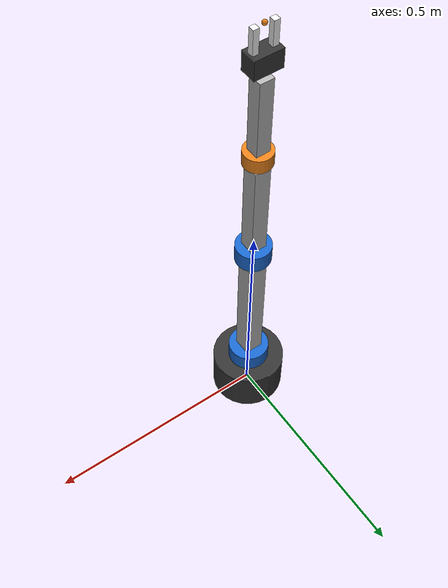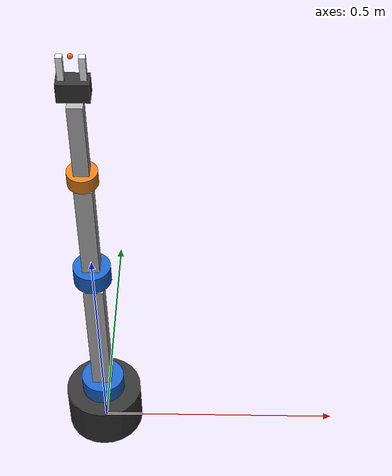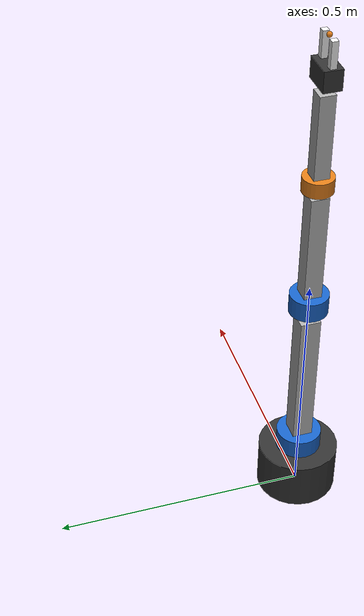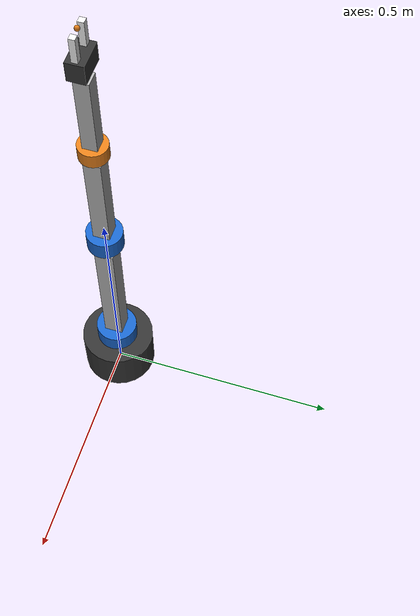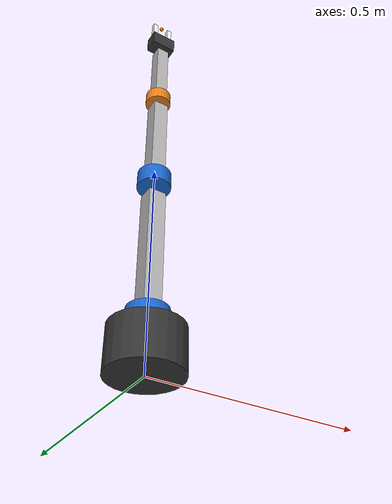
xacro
<?xml version="1.0"?>
<robot xmlns:xacro="http://www.ros.org/wiki/xacro" name="pick_place_3dof">
    <xacro:arg name="initial_positions_file" default="initial_positions.yaml" />

    <!-- Import pick_place_3dof urdf file -->
    <xacro:include filename="$(find robotic_arm_description)/urdf/arm.urdf" />

    <!-- Import control_xacro -->
    <xacro:include filename="pick_place_3dof.ros2_control.xacro" />

    <xacro:pick_place_3dof_ros2_control name="FakeSystem" initial_positions_file="$(arg initial_positions_file)"/>

</robot>

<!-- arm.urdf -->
<robot name="pick_place_3dof">

  <!-- ==================== MATERIALS ==================== -->
  <material name="dark_grey">
    <color rgba="0.2 0.2 0.2 1.0"/>
  </material>
  <material name="light_grey">
    <color rgba="0.7 0.7 0.7 1.0"/>
  </material>
  <material name="blue">
    <color rgba="0.1 0.4 0.8 1.0"/>
  </material>
  <material name="orange">
    <color rgba="0.9 0.5 0.1 1.0"/>
  </material>
  <material name="white">
    <color rgba="0.95 0.95 0.95 1.0"/>
  </material>

  <!-- ==================== BASE LINK (World anchor) ==================== -->
  <link name="world"/>

  <joint name="world_to_base" type="fixed">
    <parent link="world"/>
    <child link="base_link"/>
    <origin xyz="0 0 0" rpy="0 0 0"/>
  </joint>

  <!-- ==================== BASE LINK ==================== -->
  <link name="base_link">
    <visual>
      <origin xyz="0 0 0.05" rpy="0 0 0"/>
      <geometry>
        <cylinder radius="0.08" length="0.10"/>
      </geometry>
      <material name="dark_grey"/>
    </visual>
    <collision>
      <origin xyz="0 0 0.05" rpy="0 0 0"/>
      <geometry>
        <cylinder radius="0.08" length="0.10"/>
      </geometry>
    </collision>
    <inertial>
      <origin xyz="0 0 0.05" rpy="0 0 0"/>
      <mass value="2.0"/>
      <inertia ixx="0.0083" ixy="0.0" ixz="0.0"
               iyy="0.0083" iyz="0.0"
               izz="0.0128"/>
    </inertial>
  </link>

  <!-- ==================== JOINT 1 — Waist (Rotation Z) ==================== -->
  <joint name="joint1_waist" type="revolute">
    <parent link="base_link"/>
    <child link="link1"/>
    <origin xyz="0 0 0.10" rpy="0 0 0"/>
    <axis xyz="0 0 1"/>
    <limit lower="-3.1416" upper="3.1416" effort="50.0" velocity="1.0"/>
    <dynamics damping="0.5" friction="0.1"/>
  </joint>

  <!-- ==================== LINK 1 — Lower Arm ==================== -->
  <link name="link1">
    <visual>
      <!-- Shoulder hub -->
      <origin xyz="0 0 0.02" rpy="0 0 0"/>
      <geometry>
        <cylinder radius="0.045" length="0.04"/>
      </geometry>
      <material name="blue"/>
    </visual>
    <collision>
      <origin xyz="0 0 0.02" rpy="0 0 0"/>
      <geometry>
        <cylinder radius="0.045" length="0.04"/>
      </geometry>
    </collision>

    <!-- Lower arm body — separate visual element -->
    <visual>
      <origin xyz="0 0 0.175" rpy="0 0 0"/>
      <geometry>
        <box size="0.04 0.04 0.31"/>
      </geometry>
      <material name="light_grey"/>
    </visual>
    <collision>
      <origin xyz="0 0 0.175" rpy="0 0 0"/>
      <geometry>
        <box size="0.04 0.04 0.31"/>
      </geometry>
    </collision>

    <inertial>
      <origin xyz="0 0 0.175" rpy="0 0 0"/>
      <mass value="1.0"/>
      <inertia ixx="0.0082" ixy="0.0" ixz="0.0"
               iyy="0.0082" iyz="0.0"
               izz="0.0003"/>
    </inertial>
  </link>

  <!-- ==================== JOINT 2 — Shoulder (Rotation Y) ==================== -->
  <joint name="joint2_shoulder" type="revolute">
    <parent link="link1"/>
    <child link="link2"/>
    <origin xyz="0 0 0.35" rpy="0 0 0"/>
    <axis xyz="0 1 0"/>
    <limit lower="-1.5708" upper="1.5708" effort="40.0" velocity="1.0"/>
    <dynamics damping="0.5" friction="0.1"/>
  </joint>

  <!-- ==================== LINK 2 — Upper Arm ==================== -->
  <link name="link2">
    <visual>
      <!-- Elbow hub -->
      <origin xyz="0 0 0.02" rpy="0 0 0"/>
      <geometry>
        <cylinder radius="0.038" length="0.04"/>
      </geometry>
      <material name="blue"/>
    </visual>
    <collision>
      <origin xyz="0 0 0.02" rpy="0 0 0"/>
      <geometry>
        <cylinder radius="0.038" length="0.04"/>
      </geometry>
    </collision>

    <!-- Upper arm body -->
    <visual>
      <origin xyz="0 0 0.135" rpy="0 0 0"/>
      <geometry>
        <box size="0.035 0.035 0.25"/>
      </geometry>
      <material name="light_grey"/>
    </visual>
    <collision>
      <origin xyz="0 0 0.135" rpy="0 0 0"/>
      <geometry>
        <box size="0.035 0.035 0.25"/>
      </geometry>
    </collision>

    <inertial>
      <origin xyz="0 0 0.135" rpy="0 0 0"/>
      <mass value="0.8"/>
      <inertia ixx="0.0043" ixy="0.0" ixz="0.0"
               iyy="0.0043" iyz="0.0"
               izz="0.0002"/>
    </inertial>
  </link>

  <!-- ==================== JOINT 3 — Elbow (Rotation Y) ==================== -->
  <joint name="joint3_elbow" type="revolute">
    <parent link="link2"/>
    <child link="link3"/>
    <origin xyz="0 0 0.27" rpy="0 0 0"/>
    <axis xyz="0 1 0"/>
    <limit lower="-2.0944" upper="0.0" effort="30.0" velocity="1.5"/>
    <dynamics damping="0.3" friction="0.05"/>
  </joint>

  <!-- ==================== LINK 3 — Forearm ==================== -->
  <link name="link3">
    <visual>
      <!-- Wrist hub -->
      <origin xyz="0 0 0.015" rpy="0 0 0"/>
      <geometry>
        <cylinder radius="0.030" length="0.03"/>
      </geometry>
      <material name="orange"/>
    </visual>
    <collision>
      <origin xyz="0 0 0.015" rpy="0 0 0"/>
      <geometry>
        <cylinder radius="0.030" length="0.03"/>
      </geometry>
    </collision>

    <!-- Forearm body -->
    <visual>
      <origin xyz="0 0 0.105" rpy="0 0 0"/>
      <geometry>
        <box size="0.030 0.030 0.18"/>
      </geometry>
      <material name="light_grey"/>
    </visual>
    <collision>
      <origin xyz="0 0 0.105" rpy="0 0 0"/>
      <geometry>
        <box size="0.030 0.030 0.18"/>
      </geometry>
    </collision>

    <inertial>
      <origin xyz="0 0 0.105" rpy="0 0 0"/>
      <mass value="0.5"/>
      <inertia ixx="0.0014" ixy="0.0" ixz="0.0"
               iyy="0.0014" iyz="0.0"
               izz="0.0001"/>
    </inertial>
  </link>

  <!-- ==================== FIXED JOINT — Wrist to Gripper ==================== -->
  <joint name="joint_wrist_to_gripper" type="fixed">
    <parent link="link3"/>
    <child link="gripper_base"/>
    <origin xyz="0 0 0.21" rpy="0 0 0"/>
  </joint>

  <!-- ==================== GRIPPER BASE ==================== -->
  <link name="gripper_base">
    <visual>
      <origin xyz="0 0 0.02" rpy="0 0 0"/>
      <geometry>
        <box size="0.06 0.035 0.04"/>
      </geometry>
      <material name="dark_grey"/>
    </visual>
    <collision>
      <origin xyz="0 0 0.02" rpy="0 0 0"/>
      <geometry>
        <box size="0.06 0.035 0.04"/>
      </geometry>
    </collision>
    <inertial>
      <origin xyz="0 0 0.02" rpy="0 0 0"/>
      <mass value="0.15"/>
      <inertia ixx="0.00003" ixy="0.0" ixz="0.0"
               iyy="0.00003" iyz="0.0"
               izz="0.00004"/>
    </inertial>
  </link>

  <!-- ==================== GRIPPER LEFT FINGER ==================== -->
  <joint name="gripper_left_joint" type="prismatic">
    <parent link="gripper_base"/>
    <child link="gripper_finger_left"/>
    <origin xyz="0.02 0 0.04" rpy="0 0 0"/>
    <axis xyz="1 0 0"/>
    <limit lower="0.0" upper="0.025" effort="10.0" velocity="0.1"/>
    <dynamics damping="0.1" friction="0.01"/>
  </joint>

  <link name="gripper_finger_left">
    <visual>
      <origin xyz="0 0 0.025" rpy="0 0 0"/>
      <geometry>
        <box size="0.012 0.012 0.05"/>
      </geometry>
      <material name="white"/>
    </visual>
    <collision>
      <origin xyz="0 0 0.025" rpy="0 0 0"/>
      <geometry>
        <box size="0.012 0.012 0.05"/>
      </geometry>
    </collision>
    <inertial>
      <origin xyz="0 0 0.025" rpy="0 0 0"/>
      <mass value="0.03"/>
      <inertia ixx="0.000003" ixy="0.0" ixz="0.0"
               iyy="0.000003" iyz="0.0"
               izz="0.000001"/>
    </inertial>
  </link>

  <!-- ==================== GRIPPER RIGHT FINGER ==================== -->
  <joint name="gripper_right_joint" type="prismatic">
    <parent link="gripper_base"/>
    <child link="gripper_finger_right"/>
    <origin xyz="-0.02 0 0.04" rpy="0 0 0"/>
    <axis xyz="-1 0 0"/>
    <limit lower="0.0" upper="0.025" effort="10.0" velocity="0.1"/>
    <dynamics damping="0.1" friction="0.01"/>
    <mimic joint="gripper_left_joint" multiplier="1.0" offset="0.0"/>
  </joint>

  <link name="gripper_finger_right">
    <visual>
      <origin xyz="0 0 0.025" rpy="0 0 0"/>
      <geometry>
        <box size="0.012 0.012 0.05"/>
      </geometry>
      <material name="white"/>
    </visual>
    <collision>
      <origin xyz="0 0 0.025" rpy="0 0 0"/>
      <geometry>
        <box size="0.012 0.012 0.05"/>
      </geometry>
    </collision>
    <inertial>
      <origin xyz="0 0 0.025" rpy="0 0 0"/>
      <mass value="0.03"/>
      <inertia ixx="0.000003" ixy="0.0" ixz="0.0"
               iyy="0.000003" iyz="0.0"
               izz="0.000001"/>
    </inertial>
  </link>

  <!-- ==================== END EFFECTOR (TCP) ==================== -->
  <joint name="joint_tcp" type="fixed">
    <parent link="gripper_base"/>
    <child link="tcp"/>
    <origin xyz="0 0 0.09" rpy="0 0 0"/>
  </joint>

  <link name="tcp">
    <!-- Tiny sphere just for visualization in RViz -->
    <visual>
      <origin xyz="0 0 0" rpy="0 0 0"/>
      <geometry>
        <sphere radius="0.005"/>
      </geometry>
      <material name="orange"/>
    </visual>
  </link>

</robot>
